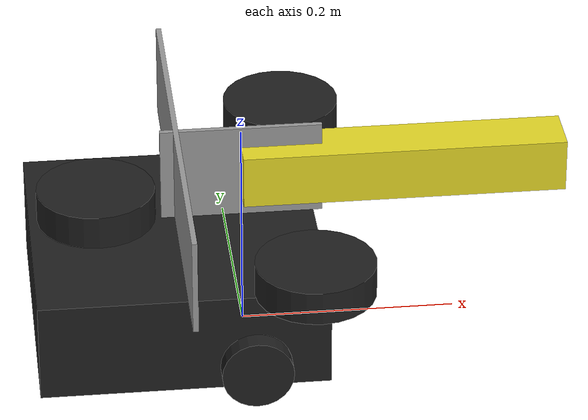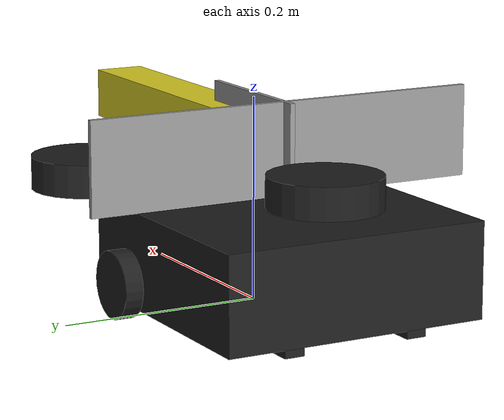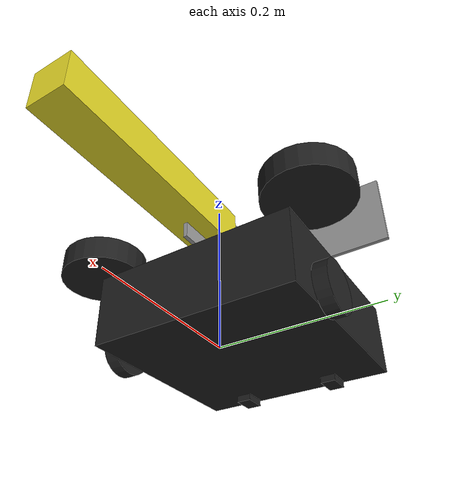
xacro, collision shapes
<?xml version="1.0" ?>
<robot name="msd700_sirius" xmlns:xacro="http://ros.org/wiki/xacro">
  <xacro:include filename="$(find msd700_visual)/urdf/common_properties.xacro"/>
  <xacro:include filename="$(find msd700_visual)/urdf/msd700_zenith.gazebo.xacro"/>

  <xacro:property name="r200_cam_rgb_px" value="0.005"/>
  <xacro:property name="r200_cam_rgb_py" value="0.018"/>
  <xacro:property name="r200_cam_rgb_pz" value="0.013"/>
  <xacro:property name="r200_cam_depth_offset" value="0.01"/>

  <link name="base_footprint"/>

  <joint name="base_joint" type="fixed">
    <parent link="base_footprint"/>
    <child link="base_link" />
    <origin xyz="0 0 0.010" rpy="0 0 0"/>
  </joint>

  <link name="base_link">
    <visual>
      <origin xyz="-0.064 0 0.0" rpy="0 0 0"/>
      <geometry>
        <mesh filename="package://turtlebot3_description/meshes/bases/waffle_base.stl" scale="0.001 0.001 0.001"/>
      </geometry>
      <material name="light_black"/>
    </visual>

    <collision>
      <origin xyz="-0.064 0 0.047" rpy="0 0 0"/>
      <geometry>
        <box size="0.266 0.266 0.094"/>
      </geometry>
    </collision>

    <inertial>
      <origin xyz="0 0 0" rpy="0 0 0"/>
      <mass value="1.3729096e+00"/>
      <inertia ixx="8.7002718e-03" ixy="-4.7576583e-05" ixz="1.1160499e-04"
               iyy="8.6195418e-03" iyz="-3.5422299e-06"
               izz="1.4612727e-02" />
    </inertial>
  </link>

  <joint name="wheel_left_joint" type="continuous">
    <parent link="base_link"/>
    <child link="wheel_left_link"/>
    <origin xyz="0.0 0.144 0.023" rpy="-1.57 0 0"/>
    <axis xyz="0 0 1"/>
  </joint>

  <link name="wheel_left_link">
    <visual>
      <origin xyz="0 0 0" rpy="1.57 0 0"/>
      <geometry>
        <mesh filename="package://turtlebot3_description/meshes/wheels/left_tire.stl" scale="0.001 0.001 0.001"/>
      </geometry>
      <material name="dark"/>
    </visual>

    <collision>
      <origin xyz="0 0 0" rpy="0 0 0"/>
      <geometry>
        <cylinder length="0.018" radius="0.033"/>
      </geometry>
    </collision>

    <inertial>
      <origin xyz="0 0 0" />
      <mass value="2.8498940e-02" />
      <inertia ixx="1.1175580e-05" ixy="-4.2369783e-11" ixz="-5.9381719e-09"
               iyy="1.1192413e-05" iyz="-1.4400107e-11"
               izz="2.0712558e-05" />
      </inertial>
  </link>

  <joint name="wheel_right_joint" type="continuous">
    <parent link="base_link"/>
    <child link="wheel_right_link"/>
    <origin xyz="0.0 -0.144 0.023" rpy="-1.57 0 0"/>
    <axis xyz="0 0 1"/>
  </joint>

  <link name="wheel_right_link">
    <visual>
      <origin xyz="0 0 0" rpy="1.57 0 0"/>
      <geometry>
        <mesh filename="package://turtlebot3_description/meshes/wheels/right_tire.stl" scale="0.001 0.001 0.001"/>
      </geometry>
      <material name="dark"/>
    </visual>

    <collision>
      <origin xyz="0 0 0" rpy="0 0 0"/>
      <geometry>
        <cylinder length="0.018" radius="0.033"/>
      </geometry>
    </collision>

    <inertial>
      <origin xyz="0 0 0" />
      <mass value="2.8498940e-02" />
      <inertia ixx="1.1175580e-05" ixy="-4.2369783e-11" ixz="-5.9381719e-09"
               iyy="1.1192413e-05" iyz="-1.4400107e-11"
               izz="2.0712558e-05" />
      </inertial>
  </link>

  <joint name="caster_back_right_joint" type="fixed">
    <parent link="base_link"/>
    <child link="caster_back_right_link"/>
    <origin xyz="-0.177 -0.064 -0.004" rpy="-1.57 0 0"/>
  </joint>

  <link name="caster_back_right_link">
    <collision>
      <origin xyz="0 0.001 0" rpy="0 0 0"/>
      <geometry>
        <box size="0.030 0.009 0.020"/>
      </geometry>
    </collision>

    <inertial>
      <origin xyz="0 0 0" />
      <mass value="0.005" />
      <inertia ixx="0.001" ixy="0.0" ixz="0.0"
               iyy="0.001" iyz="0.0"
               izz="0.001" />
    </inertial>
  </link>

  <joint name="caster_back_left_joint" type="fixed">
    <parent link="base_link"/>
    <child link="caster_back_left_link"/>
    <origin xyz="-0.177 0.064 -0.004" rpy="-1.57 0 0"/>
  </joint>

  <link name="caster_back_left_link">
    <collision>
      <origin xyz="0 0.001 0" rpy="0 0 0"/>
      <geometry>
        <box size="0.030 0.009 0.020"/>
      </geometry>
    </collision>

    <inertial>
      <origin xyz="0 0 0" />
      <mass value="0.005" />
      <inertia ixx="0.001" ixy="0.0" ixz="0.0"
               iyy="0.001" iyz="0.0"
               izz="0.001" />
    </inertial>
  </link>

  <joint name="imu_joint" type="fixed">
    <parent link="base_link"/>
    <child link="imu_link"/>
    <origin xyz="0.0 0 0.068" rpy="0 0 0"/>
  </joint>

  <link name="imu_link"/>

  <!-- Scan Rear -->

  <joint name="scan_joint" type="fixed">
    <parent link="base_link"/>
    <child link="base_scan_rear"/>
    <origin xyz="-0.15 0 0.13" rpy="0 0 0"/>
  </joint>

  <link name="base_scan_rear">
    <visual>
      <origin xyz="0 0 0" rpy="0 0 0"/>
      <geometry>
        <mesh filename="package://turtlebot3_description/meshes/sensors/lds.stl" scale="0.001 0.001 0.001"/>
      </geometry>
      <material name="dark"/>
    </visual>

    <collision>
      <origin xyz="0.015 0 -0.0065" rpy="0 0 0"/>
      <geometry>
        <cylinder length="0.0315" radius="0.055"/>
      </geometry>
    </collision>

    <inertial>
      <mass value="0.114" />
      <origin xyz="0 0 0" />
      <inertia ixx="0.001" ixy="0.0" ixz="0.0"
               iyy="0.001" iyz="0.0"
               izz="0.001" />
    </inertial>
  </link>

  <!-- Base scan 2 -->
  <joint name="scan_joint_left" type="fixed">
    <parent link="base_link"/>
    <child link="base_scan_left"/>
    <origin xyz="0.0372 0.15 0.13" rpy="0 0 0"/>
  </joint>

  <link name="base_scan_left">
    <visual>
      <origin xyz="0 0 0.0" rpy="0 0 3.14159"/>
      <geometry>
        <mesh filename="package://turtlebot3_description/meshes/sensors/lds.stl" scale="0.001 0.001 0.001"/>
      </geometry>
      <material name="dark"/>
    </visual>

    <collision>
      <origin xyz="0.015 0 -0.0065" rpy="0 0 0"/>
      <geometry>
        <cylinder length="0.0315" radius="0.055"/>
      </geometry>
    </collision>

    <inertial>
      <mass value="0.114" />
      <origin xyz="0 0 0" />
      <inertia ixx="0.001" ixy="0.0" ixz="0.0"
               iyy="0.001" iyz="0.0"
               izz="0.001" />
    </inertial>
  </link>

  <!-- Base scan right -->
  <joint name="scan_joint_right" type="fixed">
    <parent link="base_link"/>
    <child link="base_scan_right"/>
    <origin xyz="0.0372 -0.15 0.13" rpy="0 0 0"/>
  </joint>

  <link name="base_scan_right">
    <visual>
      <origin xyz="0 0 0.0" rpy="0 0 3.14159"/>
      <geometry>
        <mesh filename="package://turtlebot3_description/meshes/sensors/lds.stl" scale="0.001 0.001 0.001"/>
      </geometry>
      <material name="dark"/>
    </visual>

    <collision>
      <origin xyz="0.015 0 -0.0065" rpy="0 0 0"/>
      <geometry>
        <cylinder length="0.0315" radius="0.055"/>
      </geometry>
    </collision>

    <inertial>
      <mass value="0.114" />
      <origin xyz="0 0 0" />
      <inertia ixx="0.001" ixy="0.0" ixz="0.0"
               iyy="0.001" iyz="0.0"
               izz="0.001" />
    </inertial>
  </link>

  <!-- Separator between laser scan 1 and 2 -->
  <link name="separator_link">
    <visual>
      <origin xyz="0 0 0" rpy="0 0 0"/>
      <geometry>
        <box size="0.005 0.4 0.09"/>
      </geometry>
      <material name="gray"/>
    </visual>
    <collision>
      <origin xyz="0 0 0" rpy="0 0 0"/>
      <geometry>
        <box size="0.005 0.4 0.09"/>
      </geometry>
    </collision>
  </link>

  <joint name="separator_joint" type="fixed">
    <parent link="base_link"/>
    <child link="separator_link"/>
    <origin xyz="-0.06 0 0.15" rpy="0 0 0"/>
  </joint>

  <!-- Separator between laser scan 1 and 2 -->
  <link name="separator_link_middle">
    <visual>
      <origin xyz="0 0 0" rpy="0 0 0"/>
      <geometry>
        <box size="0.005 0.15 0.09"/>
      </geometry>
      <material name="gray"/>
    </visual>
    <collision>
      <origin xyz="0 0 0" rpy="0 0 0"/>
      <geometry>
        <box size="0.005 0.15 0.09"/>
      </geometry>
    </collision>
  </link>

  <joint name="separator_joint_middle" type="fixed">
    <parent link="base_link"/>
    <child link="separator_link_middle"/>
    <origin xyz="0.0 0 0.15" rpy="0 0 1.57"/>
  </joint>

  <!-- Blok tangan-->
  <link name="block_link">
    <visual>
      <origin xyz="0.15 0 0" rpy="0 0 0"/>
      <geometry>
        <box size="0.3 0.05 0.05"/>
      </geometry>
      <material name="yellow"/>
    </visual>
    <collision>
      <origin xyz="0.15 0 0" rpy="0 0 0"/>
      <geometry>
        <box size="0.3 0.05 0.05"/>
      </geometry>
    </collision>
    <inertial>
      <origin xyz="0.15 0 0" rpy="0 0 0"/>
      <mass value="0.001"/>
      <inertia ixx="0.001" ixy="0" ixz="0"
              iyy="0.001" iyz="0"
              izz="0.001"/>
    </inertial>
  </link>

  <!-- Joint fixed untuk menghubungkan block_link ke base_link -->
  <joint name="block_joint" type="fixed">
    <parent link="base_link"/>
    <child link="block_link"/>
    <origin xyz="0 0 0.15" rpy="0 0 0"/>
  </joint>

</robot>
